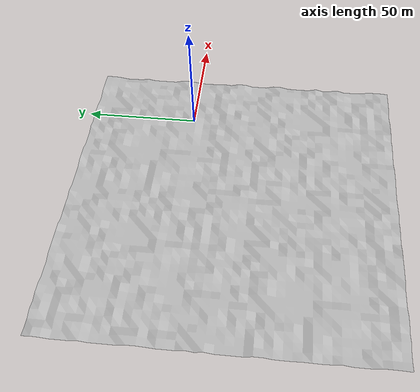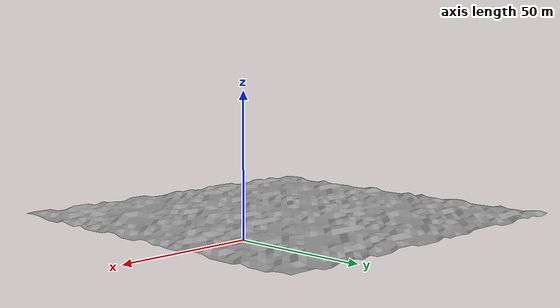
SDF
<?xml version="1.0" ?>
<sdf version="1.6">
  <model name="water1">
    <static>true</static>
      <link name="water1">
        <pose frame=''>0 0 0 0 0 0</pose>
          <collision name="water1">
            <geometry>
              <mesh>
                <uri>model://water1/model.dae</uri>
              </mesh>
            </geometry>
          </collision>
          <visual name="water1">
          <cast_shadows>false</cast_shadows>
            <geometry>
              <mesh>
                <uri>model://water1/model.dae</uri>
              </mesh>
            </geometry>
            <material>
              <script>
                <uri>model://water1/model.dae</uri>
                <name>water1</name>
              </script>
            </material>
          </visual>
      </link>
  </model>
</sdf>
